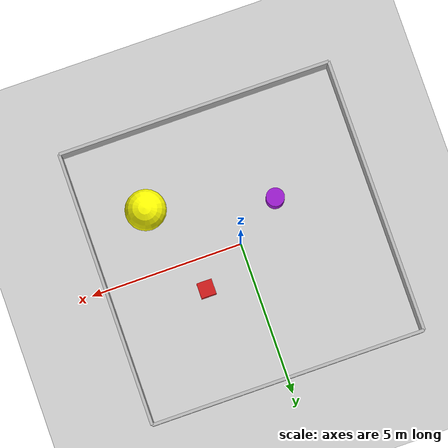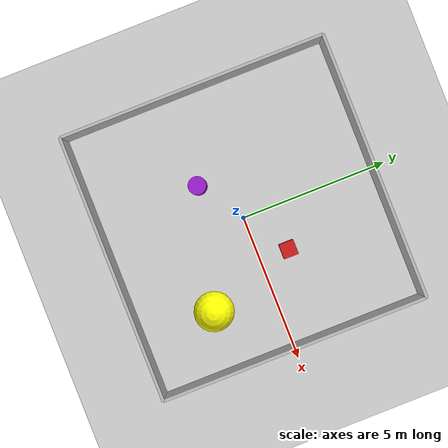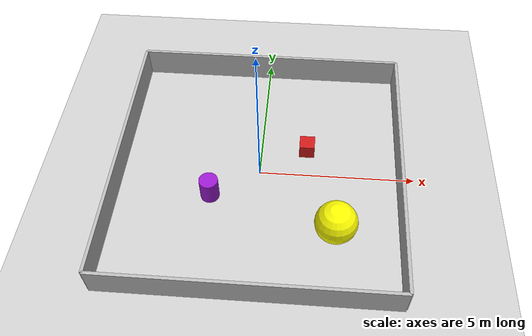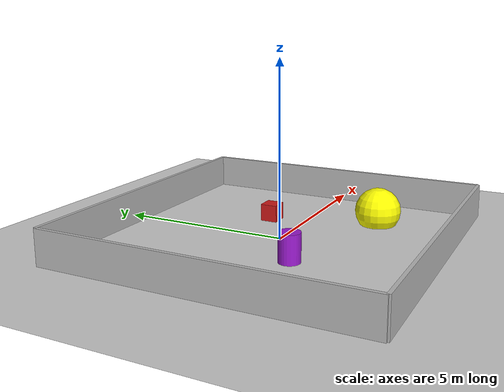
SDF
<?xml version="1.0"?>
<sdf version="1.6">
  <world name="small_room">
    <include>
      <uri>model://ground_plane</uri>
    </include>
    <include>
      <uri>model://sun</uri>
    </include>

    <!-- ============ Walls ============ -->
    <model name="wall_north">
      <static>true</static>
      <pose>0 4.5 0.5 0 0 0</pose>
      <link name="link">
        <collision name="collision">
          <geometry><box><size>9 0.1 1.0</size></box></geometry>
        </collision>
        <visual name="visual">
          <geometry><box><size>9 0.1 1.0</size></box></geometry>
        </visual>
      </link>
    </model>

    <model name="wall_south">
      <static>true</static>
      <pose>0 -4.5 0.5 0 0 0</pose>
      <link name="link">
        <collision name="collision">
          <geometry><box><size>9 0.1 1.0</size></box></geometry>
        </collision>
        <visual name="visual">
          <geometry><box><size>9 0.1 1.0</size></box></geometry>
        </visual>
      </link>
    </model>

    <model name="wall_east">
      <static>true</static>
      <pose>4.5 0 0.5 0 0 1.5708</pose>
      <link name="link">
        <collision name="collision">
          <geometry><box><size>9 0.1 1.0</size></box></geometry>
        </collision>
        <visual name="visual">
          <geometry><box><size>9 0.1 1.0</size></box></geometry>
        </visual>
      </link>
    </model>

    <model name="wall_west">
      <static>true</static>
      <pose>-4.5 0 0.5 0 0 1.5708</pose>
      <link name="link">
        <collision name="collision">
          <geometry><box><size>9 0.1 1.0</size></box></geometry>
        </collision>
        <visual name="visual">
          <geometry><box><size>9 0.1 1.0</size></box></geometry>
        </visual>
      </link>
    </model>

    <!-- ============ Obstacles ============ -->
    <model name="obstacle_box">
      <static>true</static>
      <pose>1.5 1.0 0.25 0 0 0</pose>
      <link name="link">
        <collision name="collision">
          <geometry><box><size>0.5 0.5 0.5</size></box></geometry>
        </collision>
        <visual name="visual">
          <geometry><box><size>0.5 0.5 0.5</size></box></geometry>
          <material>
            <ambient>0.8 0.1 0.1 1</ambient>
            <diffuse>0.8 0.1 0.1 1</diffuse>
          </material>
        </visual>
      </link>
    </model>

    <model name="obstacle_cylinder">
      <static>true</static>
      <pose>-1.5 -1.0 0.4 0 0 0</pose>
      <link name="link">
        <collision name="collision">
          <geometry><cylinder><radius>0.3</radius><length>0.8</length></cylinder></geometry>
        </collision>
        <visual name="visual">
          <geometry><cylinder><radius>0.3</radius><length>0.8</length></cylinder></geometry>
          <material>
            <ambient>0.6 0.1 0.8 1</ambient>
            <diffuse>0.6 0.1 0.8 1</diffuse>
          </material>
        </visual>
      </link>
    </model>
    <model name="obstacle_sphere">
      <static>true</static>
      <pose>2.5 -2.0 0.4 0 0 0</pose>
      <link name="link">
        <collision name="collision">
          <geometry><sphere><radius>.67</radius></sphere></geometry>
        </collision>
        <visual name="visual">
          <geometry><sphere><radius>.67</radius></sphere></geometry>
          <material>
            <ambient>1 1 0 1</ambient>
            <diffuse>1 1 0 1</diffuse>
          </material>
        </visual>
      </link>
    </model>
  </world>
</sdf>
